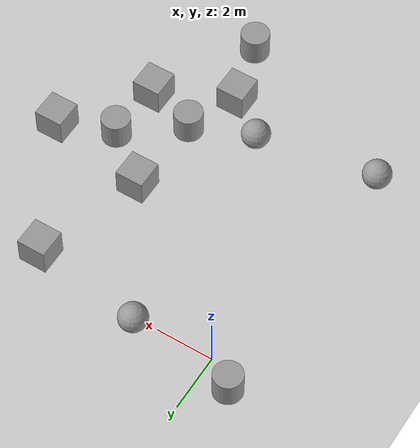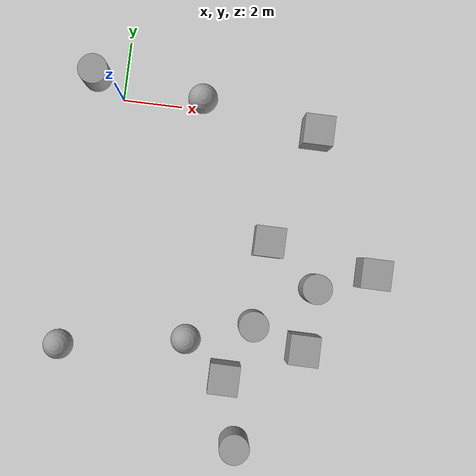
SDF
<sdf version="1.7">
 <world name="default">
  <light name="sun" type="directional">
   <pose>0 0 10 0 -0 0</pose>
   <diffuse>0.8 0.8 0.8 1</diffuse>
   <specular>0.2 0.2 0.2 1</specular>
   <attenuation>
    <range>1000</range>
    <constant>0.9</constant>
    <linear>0.01</linear>
    <quadratic>0.001</quadratic>
   </attenuation>
   <direction>-0.5 0.1 -0.9</direction>
   <spot><inner_angle>0</inner_angle><outer_angle>0</outer_angle><falloff>0</falloff></spot>
  </light>
  <model name="ground_plane">
   <static>1</static>
   <link name="link">
    <collision name="collision">
     <geometry><plane><normal>0 0 1</normal><size>100 100</size></plane></geometry>
     <surface><friction><ode><mu>100</mu><mu2>50</mu2></ode></friction></surface>
    </collision>
    <visual name="visual">
     <cast_shadows>0</cast_shadows>
     <geometry><plane><normal>0 0 1</normal><size>100 100</size></plane></geometry>
     <material>
      <script><uri>file://media/materials/scripts/gazebo.material</uri><name>Gazebo/Grey</name></script>
     </material>
    </visual>
   </link>
  </model>
  <gravity>0 0 -9.8</gravity>
  <magnetic_field>6e-06 2.3e-05 -4.2e-05</magnetic_field>
  <atmosphere type="adiabatic"/>
  <physics type="ode">
   <max_step_size>0.001</max_step_size>
   <real_time_factor>1</real_time_factor>
   <real_time_update_rate>1000</real_time_update_rate>
  </physics>
  <scene><ambient>0.4 0.4 0.4 1</ambient><background>0.7 0.7 0.7 1</background><shadows>1</shadows></scene>
  <audio><device>default</device></audio>
  <spherical_coordinates>
   <surface_model>EARTH_WGS84</surface_model>
   <latitude_deg>0</latitude_deg>
   <longitude_deg>0</longitude_deg>
   <elevation>0</elevation>
   <heading_deg>0</heading_deg>
  </spherical_coordinates>
  <model name="unit_sphere">
   <pose>3.16842 -7.80461 0.5 0 -0 0</pose>
   <link name="link">
    <inertial>
     <mass>1</mass>
     <inertia><ixx>0.1</ixx><ixy>0</ixy><ixz>0</ixz><iyy>0.1</iyy><iyz>0</iyz><izz>0.1</izz></inertia>
    </inertial>
    <collision name="collision"><geometry><sphere><radius>0.5</radius></sphere></geometry></collision>
    <visual name="visual">
     <geometry><sphere><radius>0.5</radius></sphere></geometry>
     <material>
      <script><name>Gazebo/Grey</name><uri>file://media/materials/scripts/gazebo.material</uri></script>
     </material>
    </visual>
   </link>
  </model>
  <model name="unit_cylinder">
   <pose>5.33799 -7.06375 0.499998 3e-06 -3e-06 0</pose>
   <link name="link">
    <inertial>
     <mass>1</mass>
     <inertia><ixx>0.145833</ixx><ixy>0</ixy><ixz>0</ixz><iyy>0.145833</iyy><iyz>0</iyz><izz>0.125</izz></inertia>
    </inertial>
    <collision name="collision">
     <geometry><cylinder><radius>0.5</radius><length>1</length></cylinder></geometry>
    </collision>
    <visual name="visual">
     <geometry><cylinder><radius>0.5</radius><length>1</length></cylinder></geometry>
     <material>
      <script><name>Gazebo/Grey</name><uri>file://media/materials/scripts/gazebo.material</uri></script>
     </material>
    </visual>
   </link>
  </model>
  <model name="unit_box">
   <pose>4.58205 -8.90419 0.499995 1e-05 -0 0</pose>
   <link name="link">
    <inertial>
     <mass>1</mass>
     <inertia>
      <ixx>0.166667</ixx>
      <ixy>0</ixy>
      <ixz>0</ixz>
      <iyy>0.166667</iyy>
      <iyz>0</iyz>
      <izz>0.166667</izz>
     </inertia>
    </inertial>
    <collision name="collision"><geometry><box><size>1 1 1</size></box></geometry></collision>
    <visual name="visual">
     <geometry><box><size>1 1 1</size></box></geometry>
     <material>
      <script><name>Gazebo/Grey</name><uri>file://media/materials/scripts/gazebo.material</uri></script>
     </material>
    </visual>
   </link>
  </model>
  <model name="unit_box_0">
   <pose>5.51619 -4.24815 0.499995 0 -1e-05 0</pose>
   <link name="link">
    <inertial>
     <mass>1</mass>
     <inertia>
      <ixx>0.166667</ixx>
      <ixy>0</ixy>
      <ixz>0</ixz>
      <iyy>0.166667</iyy>
      <iyz>0</iyz>
      <izz>0.166667</izz>
     </inertia>
    </inertial>
    <collision name="collision"><geometry><box><size>1 1 1</size></box></geometry></collision>
    <visual name="visual">
     <geometry><box><size>1 1 1</size></box></geometry>
     <material>
      <script><name>Gazebo/Grey</name><uri>file://media/materials/scripts/gazebo.material</uri></script>
     </material>
    </visual>
   </link>
  </model>
  <model name="unit_cylinder_0">
   <pose>7.24357 -5.6011 0.499998 3e-06 -3e-06 0</pose>
   <link name="link">
    <inertial>
     <mass>1</mass>
     <inertia><ixx>0.145833</ixx><ixy>0</ixy><ixz>0</ixz><iyy>0.145833</iyy><iyz>0</iyz><izz>0.125</izz></inertia>
    </inertial>
    <collision name="collision">
     <geometry><cylinder><radius>0.5</radius><length>1</length></cylinder></geometry>
    </collision>
    <visual name="visual">
     <geometry><cylinder><radius>0.5</radius><length>1</length></cylinder></geometry>
     <material>
      <script><name>Gazebo/Grey</name><uri>file://media/materials/scripts/gazebo.material</uri></script>
     </material>
    </visual>
   </link>
  </model>
  <model name="unit_sphere_0">
   <pose>-1.02435 -8.5043 0.5 0 -0 0</pose>
   <link name="link">
    <inertial>
     <mass>1</mass>
     <inertia><ixx>0.1</ixx><ixy>0</ixy><ixz>0</ixz><iyy>0.1</iyy><iyz>0</iyz><izz>0.1</izz></inertia>
    </inertial>
    <collision name="collision"><geometry><sphere><radius>0.5</radius></sphere></geometry></collision>
    <visual name="visual">
     <geometry><sphere><radius>0.5</radius></sphere></geometry>
     <material>
      <script><name>Gazebo/Grey</name><uri>file://media/materials/scripts/gazebo.material</uri></script>
     </material>
    </visual>
   </link>
  </model>
  <model name="unit_sphere_1">
   <pose>2.71816 0.265059 0.5 0 -0 0</pose>
   <link name="link">
    <inertial>
     <mass>1</mass>
     <inertia><ixx>0.1</ixx><ixy>0</ixy><ixz>0</ixz><iyy>0.1</iyy><iyz>0</iyz><izz>0.1</izz></inertia>
    </inertial>
    <collision name="collision"><geometry><sphere><radius>0.5</radius></sphere></geometry></collision>
    <visual name="visual">
     <geometry><sphere><radius>0.5</radius></sphere></geometry>
     <material>
      <script><name>Gazebo/Grey</name><uri>file://media/materials/scripts/gazebo.material</uri></script>
     </material>
    </visual>
   </link>
  </model>
  <model name="unit_cylinder_1">
   <pose>-1.00152 0.670699 0.499998 3e-06 -4e-06 0</pose>
   <link name="link">
    <inertial>
     <mass>1</mass>
     <inertia><ixx>0.145833</ixx><ixy>0</ixy><ixz>0</ixz><iyy>0.145833</iyy><iyz>0</iyz><izz>0.125</izz></inertia>
    </inertial>
    <collision name="collision">
     <geometry><cylinder><radius>0.5</radius><length>1</length></cylinder></geometry>
    </collision>
    <visual name="visual">
     <geometry><cylinder><radius>0.5</radius><length>1</length></cylinder></geometry>
     <material>
      <script><name>Gazebo/Grey</name><uri>file://media/materials/scripts/gazebo.material</uri></script>
     </material>
    </visual>
   </link>
  </model>
  <model name="unit_box_1">
   <pose>6.66762 -0.385317 0.499995 1e-05 -0 0</pose>
   <link name="link">
    <inertial>
     <mass>1</mass>
     <inertia>
      <ixx>0.166667</ixx>
      <ixy>0</ixy>
      <ixz>0</ixz>
      <iyy>0.166667</iyy>
      <iyz>0</iyz>
      <izz>0.166667</izz>
     </inertia>
    </inertial>
    <collision name="collision"><geometry><box><size>1 1 1</size></box></geometry></collision>
    <visual name="visual">
     <geometry><box><size>1 1 1</size></box></geometry>
     <material>
      <script><name>Gazebo/Grey</name><uri>file://media/materials/scripts/gazebo.material</uri></script>
     </material>
    </visual>
   </link>
  </model>
  <model name="unit_cylinder_2">
   <pose>5.20299 -11.0836 0.499998 3e-06 4e-06 -0</pose>
   <link name="link">
    <inertial>
     <mass>1</mass>
     <inertia><ixx>0.145833</ixx><ixy>0</ixy><ixz>0</ixz><iyy>0.145833</iyy><iyz>0</iyz><izz>0.125</izz></inertia>
    </inertial>
    <collision name="collision">
     <geometry><cylinder><radius>0.5</radius><length>1</length></cylinder></geometry>
    </collision>
    <visual name="visual">
     <geometry><cylinder><radius>0.5</radius><length>1</length></cylinder></geometry>
     <material>
      <script><name>Gazebo/Grey</name><uri>file://media/materials/scripts/gazebo.material</uri></script>
     </material>
    </visual>
   </link>
  </model>
  <model name="unit_box_2">
   <pose>7.07429 -7.63725 0.499995 1e-05 -0 0</pose>
   <link name="link">
    <inertial>
     <mass>1</mass>
     <inertia>
      <ixx>0.166667</ixx>
      <ixy>0</ixy>
      <ixz>0</ixz>
      <iyy>0.166667</iyy>
      <iyz>0</iyz>
      <izz>0.166667</izz>
     </inertia>
    </inertial>
    <collision name="collision"><geometry><box><size>1 1 1</size></box></geometry></collision>
    <visual name="visual">
     <geometry><box><size>1 1 1</size></box></geometry>
     <material>
      <script><name>Gazebo/Grey</name><uri>file://media/materials/scripts/gazebo.material</uri></script>
     </material>
    </visual>
   </link>
  </model>
  <model name="unit_box_3">
   <pose>9.1076 -4.86814 0.499995 0 -1e-05 0</pose>
   <link name="link">
    <inertial>
     <mass>1</mass>
     <inertia>
      <ixx>0.166667</ixx>
      <ixy>0</ixy>
      <ixz>0</ixz>
      <iyy>0.166667</iyy>
      <iyz>0</iyz>
      <izz>0.166667</izz>
     </inertia>
    </inertial>
    <collision name="collision"><geometry><box><size>1 1 1</size></box></geometry></collision>
    <visual name="visual">
     <geometry><box><size>1 1 1</size></box></geometry>
     <material>
      <script><name>Gazebo/Grey</name><uri>file://media/materials/scripts/gazebo.material</uri></script>
     </material>
    </visual>
   </link>
  </model>
 </world>
</sdf>
